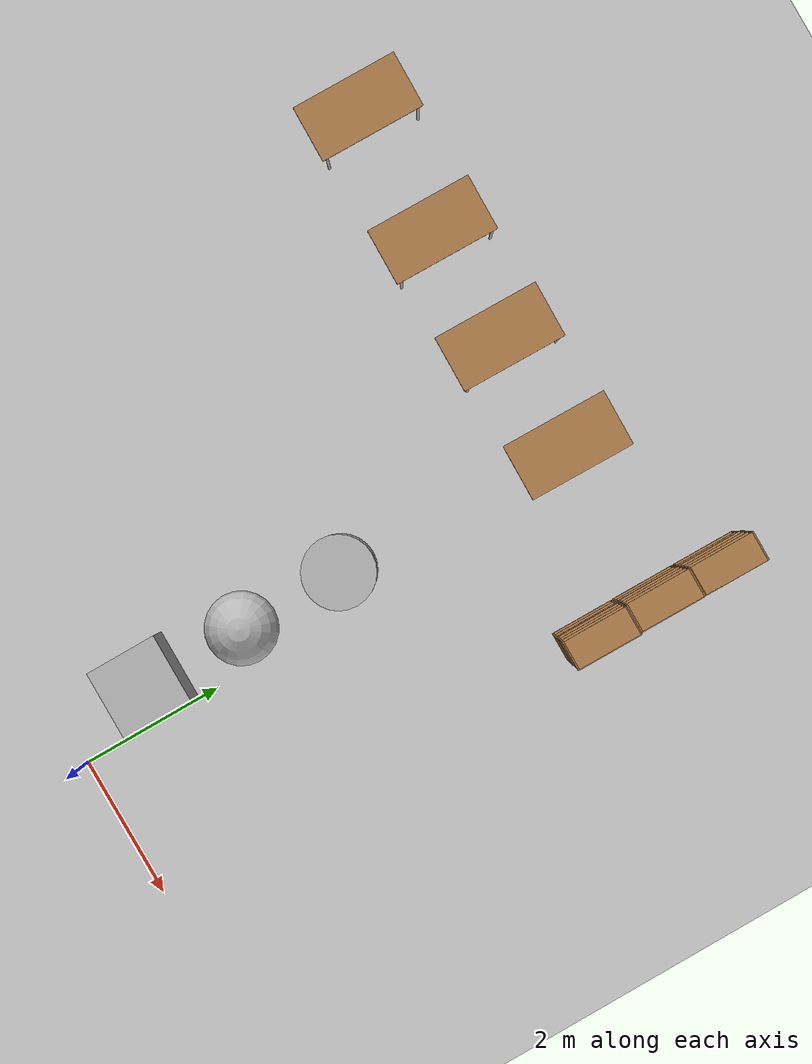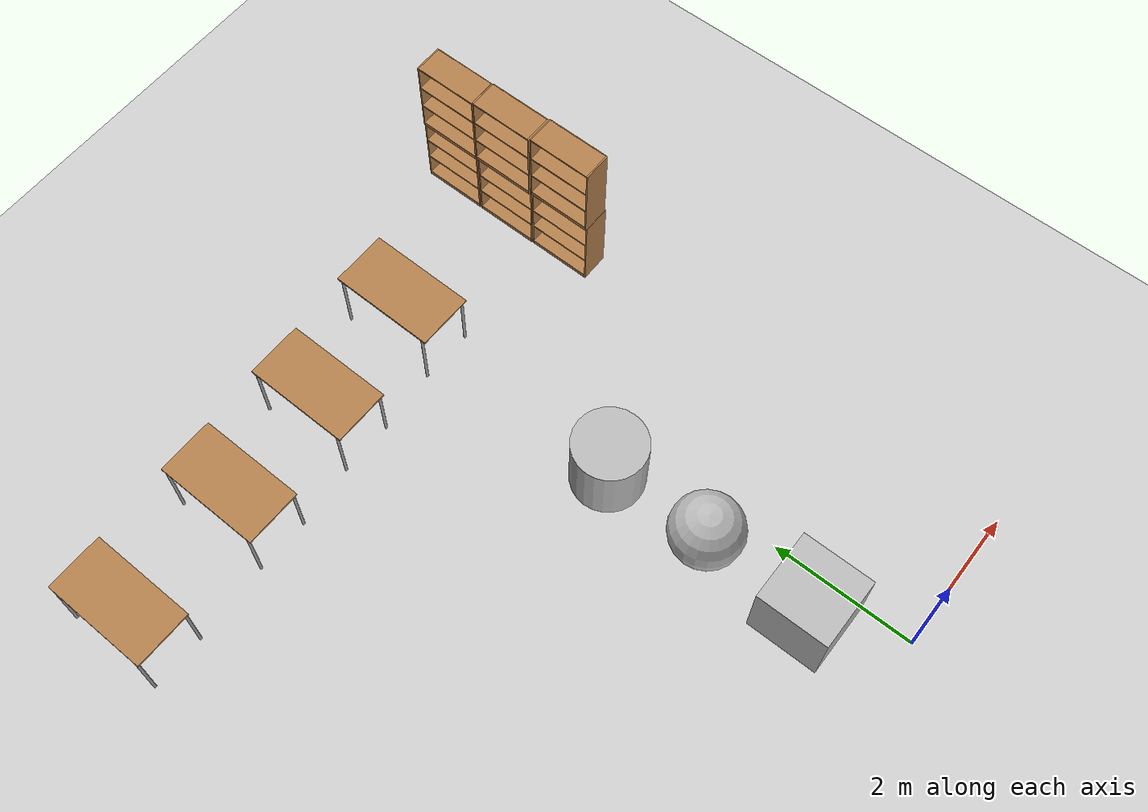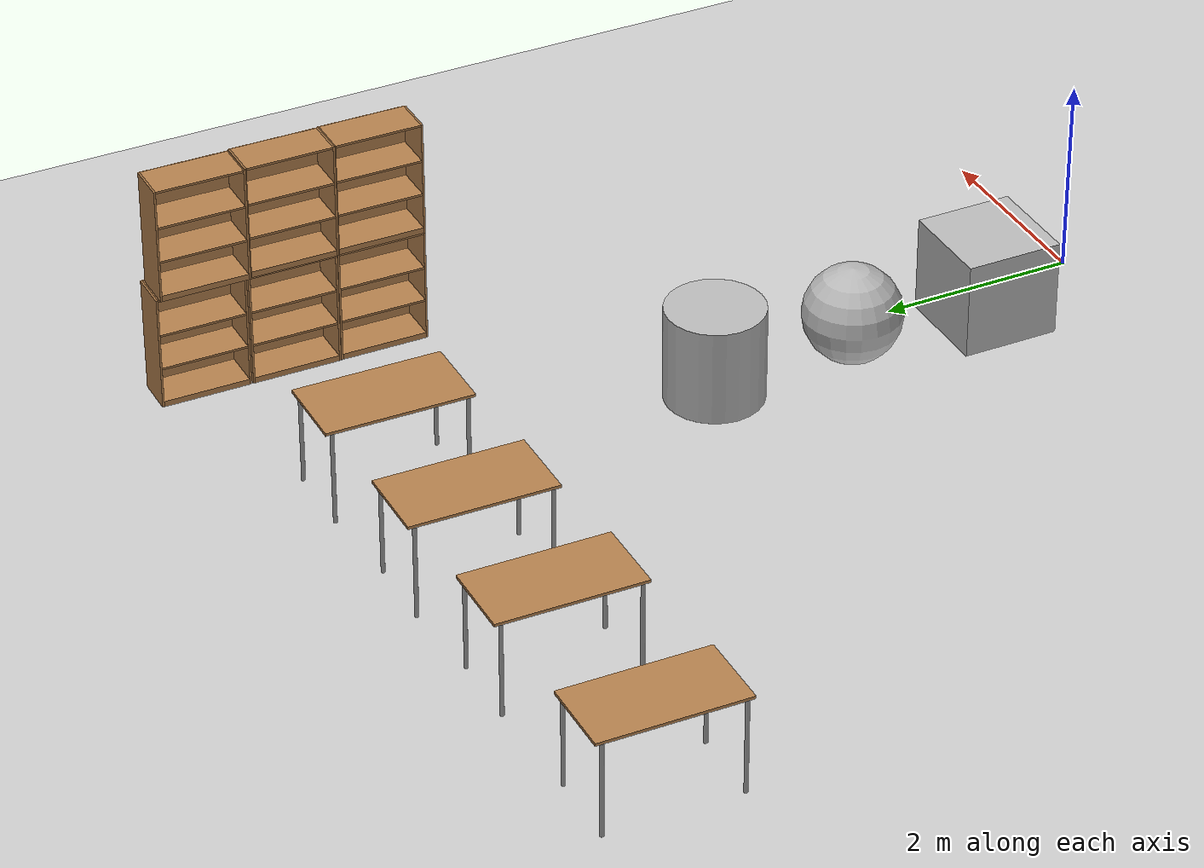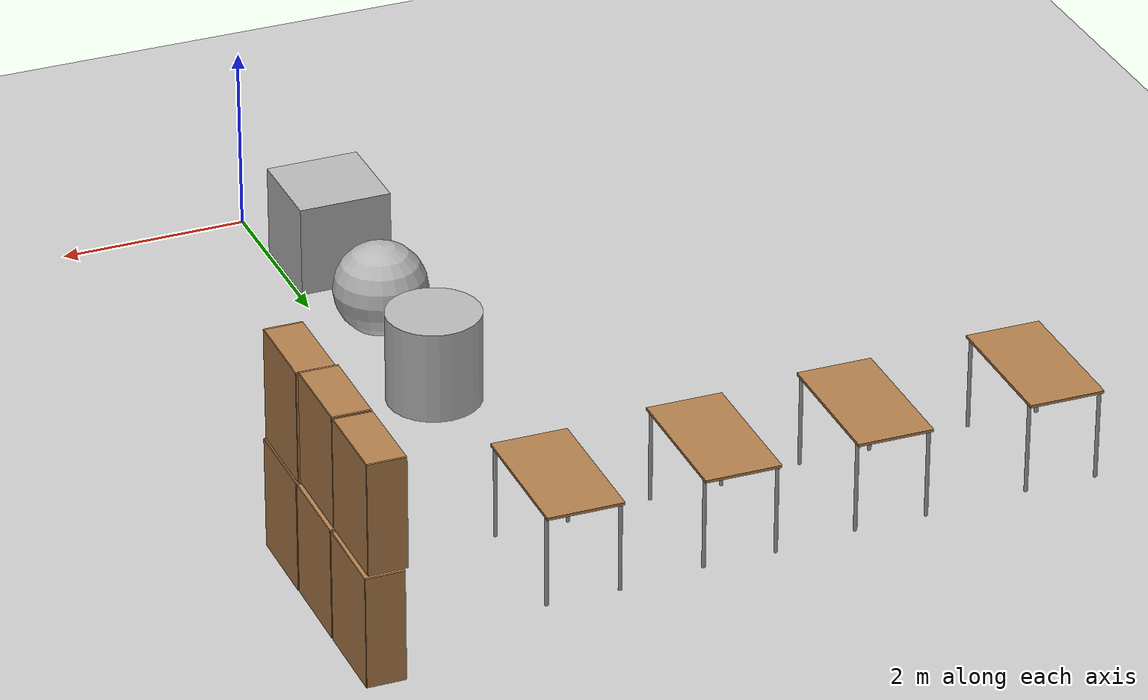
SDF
<sdf version="1.7">
 <world name="default">
  <model name="ground_plane">
   <static>1</static>
   <link name="link">
    <collision name="collision">
     <geometry><plane><normal>0 0 1</normal><size>100 100</size></plane></geometry>
     <surface><friction><ode><mu>100</mu><mu2>50</mu2></ode></friction></surface>
    </collision>
    <visual name="visual">
     <cast_shadows>0</cast_shadows>
     <geometry><plane><normal>0 0 1</normal><size>100 100</size></plane></geometry>
     <material>
      <script><uri>file://media/materials/scripts/gazebo.material</uri><name>Gazebo/Grey</name></script>
     </material>
    </visual>
   </link>
  </model>
  <model name="bookshelf">
   <static>1</static>
   <link name="link">
    <inertial><mass>1</mass></inertial>
    <collision name="back">
     <pose>0 0.005 0.6 0 -0 0</pose>
     <geometry><box><size>0.9 0.01 1.2</size></box></geometry>
    </collision>
    <visual name="visual1">
     <pose>0 0.005 0.6 0 -0 0</pose>
     <geometry><box><size>0.9 0.01 1.2</size></box></geometry>
     <material>
      <script><uri>file://media/materials/scripts/gazebo.material</uri><name>Gazebo/Wood</name></script>
     </material>
    </visual>
    <collision name="left_side">
     <pose>0.45 -0.195 0.6 0 -0 0</pose>
     <geometry><box><size>0.02 0.4 1.2</size></box></geometry>
    </collision>
    <visual name="visual2">
     <pose>0.45 -0.195 0.6 0 -0 0</pose>
     <geometry><box><size>0.02 0.4 1.2</size></box></geometry>
     <material>
      <script><uri>file://media/materials/scripts/gazebo.material</uri><name>Gazebo/Wood</name></script>
     </material>
    </visual>
    <collision name="right_side">
     <pose>-0.45 -0.195 0.6 0 -0 0</pose>
     <geometry><box><size>0.02 0.4 1.2</size></box></geometry>
    </collision>
    <visual name="visual3">
     <pose>-0.45 -0.195 0.6 0 -0 0</pose>
     <geometry><box><size>0.02 0.4 1.2</size></box></geometry>
     <material>
      <script><uri>file://media/materials/scripts/gazebo.material</uri><name>Gazebo/Wood</name></script>
     </material>
    </visual>
    <collision name="bottom">
     <pose>0 -0.195 0.03 0 -0 0</pose>
     <geometry><box><size>0.88 0.4 0.06</size></box></geometry>
    </collision>
    <visual name="visual4">
     <pose>0 -0.195 0.03 0 -0 0</pose>
     <geometry><box><size>0.88 0.4 0.06</size></box></geometry>
     <material>
      <script><uri>file://media/materials/scripts/gazebo.material</uri><name>Gazebo/Wood</name></script>
     </material>
    </visual>
    <collision name="top">
     <pose>0 -0.195 1.19 0 -0 0</pose>
     <geometry><box><size>0.88 0.4 0.02</size></box></geometry>
    </collision>
    <visual name="visual5">
     <pose>0 -0.195 1.19 0 -0 0</pose>
     <geometry><box><size>0.88 0.4 0.02</size></box></geometry>
     <material>
      <script><uri>file://media/materials/scripts/gazebo.material</uri><name>Gazebo/Wood</name></script>
     </material>
    </visual>
    <collision name="low_shelf">
     <pose>0 -0.195 0.43 0 -0 0</pose>
     <geometry><box><size>0.88 0.4 0.02</size></box></geometry>
    </collision>
    <visual name="visual6">
     <pose>0 -0.195 0.43 0 -0 0</pose>
     <geometry><box><size>0.88 0.4 0.02</size></box></geometry>
     <material>
      <script><uri>file://media/materials/scripts/gazebo.material</uri><name>Gazebo/Wood</name></script>
     </material>
    </visual>
    <collision name="high_shelf">
     <pose>0 -0.195 0.8 0 -0 0</pose>
     <geometry><box><size>0.88 0.4 0.02</size></box></geometry>
    </collision>
    <visual name="visual7">
     <pose>0 -0.195 0.8 0 -0 0</pose>
     <geometry><box><size>0.88 0.4 0.02</size></box></geometry>
     <material>
      <script><uri>file://media/materials/scripts/gazebo.material</uri><name>Gazebo/Wood</name></script>
     </material>
    </visual>
   </link>
   <pose>2.02719 8.56875 0 0 0 -1.57846</pose>
  </model>
  <model name="bookshelf_clone">
   <static>1</static>
   <link name="link">
    <inertial><mass>1</mass></inertial>
    <collision name="back">
     <pose>0 0.005 0.6 0 -0 0</pose>
     <geometry><box><size>0.9 0.01 1.2</size></box></geometry>
    </collision>
    <visual name="visual1">
     <pose>0 0.005 0.6 0 -0 0</pose>
     <geometry><box><size>0.9 0.01 1.2</size></box></geometry>
     <material>
      <script><uri>file://media/materials/scripts/gazebo.material</uri><name>Gazebo/Wood</name></script>
     </material>
    </visual>
    <collision name="left_side">
     <pose>0.45 -0.195 0.6 0 -0 0</pose>
     <geometry><box><size>0.02 0.4 1.2</size></box></geometry>
    </collision>
    <visual name="visual2">
     <pose>0.45 -0.195 0.6 0 -0 0</pose>
     <geometry><box><size>0.02 0.4 1.2</size></box></geometry>
     <material>
      <script><uri>file://media/materials/scripts/gazebo.material</uri><name>Gazebo/Wood</name></script>
     </material>
    </visual>
    <collision name="right_side">
     <pose>-0.45 -0.195 0.6 0 -0 0</pose>
     <geometry><box><size>0.02 0.4 1.2</size></box></geometry>
    </collision>
    <visual name="visual3">
     <pose>-0.45 -0.195 0.6 0 -0 0</pose>
     <geometry><box><size>0.02 0.4 1.2</size></box></geometry>
     <material>
      <script><uri>file://media/materials/scripts/gazebo.material</uri><name>Gazebo/Wood</name></script>
     </material>
    </visual>
    <collision name="bottom">
     <pose>0 -0.195 0.03 0 -0 0</pose>
     <geometry><box><size>0.88 0.4 0.06</size></box></geometry>
    </collision>
    <visual name="visual4">
     <pose>0 -0.195 0.03 0 -0 0</pose>
     <geometry><box><size>0.88 0.4 0.06</size></box></geometry>
     <material>
      <script><uri>file://media/materials/scripts/gazebo.material</uri><name>Gazebo/Wood</name></script>
     </material>
    </visual>
    <collision name="top">
     <pose>0 -0.195 1.19 0 -0 0</pose>
     <geometry><box><size>0.88 0.4 0.02</size></box></geometry>
    </collision>
    <visual name="visual5">
     <pose>0 -0.195 1.19 0 -0 0</pose>
     <geometry><box><size>0.88 0.4 0.02</size></box></geometry>
     <material>
      <script><uri>file://media/materials/scripts/gazebo.material</uri><name>Gazebo/Wood</name></script>
     </material>
    </visual>
    <collision name="low_shelf">
     <pose>0 -0.195 0.43 0 -0 0</pose>
     <geometry><box><size>0.88 0.4 0.02</size></box></geometry>
    </collision>
    <visual name="visual6">
     <pose>0 -0.195 0.43 0 -0 0</pose>
     <geometry><box><size>0.88 0.4 0.02</size></box></geometry>
     <material>
      <script><uri>file://media/materials/scripts/gazebo.material</uri><name>Gazebo/Wood</name></script>
     </material>
    </visual>
    <collision name="high_shelf">
     <pose>0 -0.195 0.8 0 -0 0</pose>
     <geometry><box><size>0.88 0.4 0.02</size></box></geometry>
    </collision>
    <visual name="visual7">
     <pose>0 -0.195 0.8 0 -0 0</pose>
     <geometry><box><size>0.88 0.4 0.02</size></box></geometry>
     <material>
      <script><uri>file://media/materials/scripts/gazebo.material</uri><name>Gazebo/Wood</name></script>
     </material>
    </visual>
   </link>
   <pose>2.02018 7.63191 0 0 0 -1.57846</pose>
  </model>
  <model name="bookshelf_clone_0">
   <static>1</static>
   <link name="link">
    <inertial><mass>1</mass></inertial>
    <collision name="back">
     <pose>0 0.005 0.6 0 -0 0</pose>
     <geometry><box><size>0.9 0.01 1.2</size></box></geometry>
    </collision>
    <visual name="visual1">
     <pose>0 0.005 0.6 0 -0 0</pose>
     <geometry><box><size>0.9 0.01 1.2</size></box></geometry>
     <material>
      <script><uri>file://media/materials/scripts/gazebo.material</uri><name>Gazebo/Wood</name></script>
     </material>
    </visual>
    <collision name="left_side">
     <pose>0.45 -0.195 0.6 0 -0 0</pose>
     <geometry><box><size>0.02 0.4 1.2</size></box></geometry>
    </collision>
    <visual name="visual2">
     <pose>0.45 -0.195 0.6 0 -0 0</pose>
     <geometry><box><size>0.02 0.4 1.2</size></box></geometry>
     <material>
      <script><uri>file://media/materials/scripts/gazebo.material</uri><name>Gazebo/Wood</name></script>
     </material>
    </visual>
    <collision name="right_side">
     <pose>-0.45 -0.195 0.6 0 -0 0</pose>
     <geometry><box><size>0.02 0.4 1.2</size></box></geometry>
    </collision>
    <visual name="visual3">
     <pose>-0.45 -0.195 0.6 0 -0 0</pose>
     <geometry><box><size>0.02 0.4 1.2</size></box></geometry>
     <material>
      <script><uri>file://media/materials/scripts/gazebo.material</uri><name>Gazebo/Wood</name></script>
     </material>
    </visual>
    <collision name="bottom">
     <pose>0 -0.195 0.03 0 -0 0</pose>
     <geometry><box><size>0.88 0.4 0.06</size></box></geometry>
    </collision>
    <visual name="visual4">
     <pose>0 -0.195 0.03 0 -0 0</pose>
     <geometry><box><size>0.88 0.4 0.06</size></box></geometry>
     <material>
      <script><uri>file://media/materials/scripts/gazebo.material</uri><name>Gazebo/Wood</name></script>
     </material>
    </visual>
    <collision name="top">
     <pose>0 -0.195 1.19 0 -0 0</pose>
     <geometry><box><size>0.88 0.4 0.02</size></box></geometry>
    </collision>
    <visual name="visual5">
     <pose>0 -0.195 1.19 0 -0 0</pose>
     <geometry><box><size>0.88 0.4 0.02</size></box></geometry>
     <material>
      <script><uri>file://media/materials/scripts/gazebo.material</uri><name>Gazebo/Wood</name></script>
     </material>
    </visual>
    <collision name="low_shelf">
     <pose>0 -0.195 0.43 0 -0 0</pose>
     <geometry><box><size>0.88 0.4 0.02</size></box></geometry>
    </collision>
    <visual name="visual6">
     <pose>0 -0.195 0.43 0 -0 0</pose>
     <geometry><box><size>0.88 0.4 0.02</size></box></geometry>
     <material>
      <script><uri>file://media/materials/scripts/gazebo.material</uri><name>Gazebo/Wood</name></script>
     </material>
    </visual>
    <collision name="high_shelf">
     <pose>0 -0.195 0.8 0 -0 0</pose>
     <geometry><box><size>0.88 0.4 0.02</size></box></geometry>
    </collision>
    <visual name="visual7">
     <pose>0 -0.195 0.8 0 -0 0</pose>
     <geometry><box><size>0.88 0.4 0.02</size></box></geometry>
     <material>
      <script><uri>file://media/materials/scripts/gazebo.material</uri><name>Gazebo/Wood</name></script>
     </material>
    </visual>
   </link>
   <pose>2.01813 6.70689 0 0 0 -1.57846</pose>
  </model>
  <model name="bookshelf_clone_1">
   <static>1</static>
   <link name="link">
    <inertial><mass>1</mass></inertial>
    <collision name="back">
     <pose>0 0.005 0.6 0 -0 0</pose>
     <geometry><box><size>0.9 0.01 1.2</size></box></geometry>
    </collision>
    <visual name="visual1">
     <pose>0 0.005 0.6 0 -0 0</pose>
     <geometry><box><size>0.9 0.01 1.2</size></box></geometry>
     <material>
      <script><uri>file://media/materials/scripts/gazebo.material</uri><name>Gazebo/Wood</name></script>
     </material>
    </visual>
    <collision name="left_side">
     <pose>0.45 -0.195 0.6 0 -0 0</pose>
     <geometry><box><size>0.02 0.4 1.2</size></box></geometry>
    </collision>
    <visual name="visual2">
     <pose>0.45 -0.195 0.6 0 -0 0</pose>
     <geometry><box><size>0.02 0.4 1.2</size></box></geometry>
     <material>
      <script><uri>file://media/materials/scripts/gazebo.material</uri><name>Gazebo/Wood</name></script>
     </material>
    </visual>
    <collision name="right_side">
     <pose>-0.45 -0.195 0.6 0 -0 0</pose>
     <geometry><box><size>0.02 0.4 1.2</size></box></geometry>
    </collision>
    <visual name="visual3">
     <pose>-0.45 -0.195 0.6 0 -0 0</pose>
     <geometry><box><size>0.02 0.4 1.2</size></box></geometry>
     <material>
      <script><uri>file://media/materials/scripts/gazebo.material</uri><name>Gazebo/Wood</name></script>
     </material>
    </visual>
    <collision name="bottom">
     <pose>0 -0.195 0.03 0 -0 0</pose>
     <geometry><box><size>0.88 0.4 0.06</size></box></geometry>
    </collision>
    <visual name="visual4">
     <pose>0 -0.195 0.03 0 -0 0</pose>
     <geometry><box><size>0.88 0.4 0.06</size></box></geometry>
     <material>
      <script><uri>file://media/materials/scripts/gazebo.material</uri><name>Gazebo/Wood</name></script>
     </material>
    </visual>
    <collision name="top">
     <pose>0 -0.195 1.19 0 -0 0</pose>
     <geometry><box><size>0.88 0.4 0.02</size></box></geometry>
    </collision>
    <visual name="visual5">
     <pose>0 -0.195 1.19 0 -0 0</pose>
     <geometry><box><size>0.88 0.4 0.02</size></box></geometry>
     <material>
      <script><uri>file://media/materials/scripts/gazebo.material</uri><name>Gazebo/Wood</name></script>
     </material>
    </visual>
    <collision name="low_shelf">
     <pose>0 -0.195 0.43 0 -0 0</pose>
     <geometry><box><size>0.88 0.4 0.02</size></box></geometry>
    </collision>
    <visual name="visual6">
     <pose>0 -0.195 0.43 0 -0 0</pose>
     <geometry><box><size>0.88 0.4 0.02</size></box></geometry>
     <material>
      <script><uri>file://media/materials/scripts/gazebo.material</uri><name>Gazebo/Wood</name></script>
     </material>
    </visual>
    <collision name="high_shelf">
     <pose>0 -0.195 0.8 0 -0 0</pose>
     <geometry><box><size>0.88 0.4 0.02</size></box></geometry>
    </collision>
    <visual name="visual7">
     <pose>0 -0.195 0.8 0 -0 0</pose>
     <geometry><box><size>0.88 0.4 0.02</size></box></geometry>
     <material>
      <script><uri>file://media/materials/scripts/gazebo.material</uri><name>Gazebo/Wood</name></script>
     </material>
    </visual>
   </link>
   <pose>1.98401 8.53938 1.20832 0 0 -1.57846</pose>
  </model>
  <model name="bookshelf_clone_1_clone">
   <static>1</static>
   <link name="link">
    <inertial><mass>1</mass></inertial>
    <collision name="back">
     <pose>0 0.005 0.6 0 -0 0</pose>
     <geometry><box><size>0.9 0.01 1.2</size></box></geometry>
    </collision>
    <visual name="visual1">
     <pose>0 0.005 0.6 0 -0 0</pose>
     <geometry><box><size>0.9 0.01 1.2</size></box></geometry>
     <material>
      <script><uri>file://media/materials/scripts/gazebo.material</uri><name>Gazebo/Wood</name></script>
     </material>
    </visual>
    <collision name="left_side">
     <pose>0.45 -0.195 0.6 0 -0 0</pose>
     <geometry><box><size>0.02 0.4 1.2</size></box></geometry>
    </collision>
    <visual name="visual2">
     <pose>0.45 -0.195 0.6 0 -0 0</pose>
     <geometry><box><size>0.02 0.4 1.2</size></box></geometry>
     <material>
      <script><uri>file://media/materials/scripts/gazebo.material</uri><name>Gazebo/Wood</name></script>
     </material>
    </visual>
    <collision name="right_side">
     <pose>-0.45 -0.195 0.6 0 -0 0</pose>
     <geometry><box><size>0.02 0.4 1.2</size></box></geometry>
    </collision>
    <visual name="visual3">
     <pose>-0.45 -0.195 0.6 0 -0 0</pose>
     <geometry><box><size>0.02 0.4 1.2</size></box></geometry>
     <material>
      <script><uri>file://media/materials/scripts/gazebo.material</uri><name>Gazebo/Wood</name></script>
     </material>
    </visual>
    <collision name="bottom">
     <pose>0 -0.195 0.03 0 -0 0</pose>
     <geometry><box><size>0.88 0.4 0.06</size></box></geometry>
    </collision>
    <visual name="visual4">
     <pose>0 -0.195 0.03 0 -0 0</pose>
     <geometry><box><size>0.88 0.4 0.06</size></box></geometry>
     <material>
      <script><uri>file://media/materials/scripts/gazebo.material</uri><name>Gazebo/Wood</name></script>
     </material>
    </visual>
    <collision name="top">
     <pose>0 -0.195 1.19 0 -0 0</pose>
     <geometry><box><size>0.88 0.4 0.02</size></box></geometry>
    </collision>
    <visual name="visual5">
     <pose>0 -0.195 1.19 0 -0 0</pose>
     <geometry><box><size>0.88 0.4 0.02</size></box></geometry>
     <material>
      <script><uri>file://media/materials/scripts/gazebo.material</uri><name>Gazebo/Wood</name></script>
     </material>
    </visual>
    <collision name="low_shelf">
     <pose>0 -0.195 0.43 0 -0 0</pose>
     <geometry><box><size>0.88 0.4 0.02</size></box></geometry>
    </collision>
    <visual name="visual6">
     <pose>0 -0.195 0.43 0 -0 0</pose>
     <geometry><box><size>0.88 0.4 0.02</size></box></geometry>
     <material>
      <script><uri>file://media/materials/scripts/gazebo.material</uri><name>Gazebo/Wood</name></script>
     </material>
    </visual>
    <collision name="high_shelf">
     <pose>0 -0.195 0.8 0 -0 0</pose>
     <geometry><box><size>0.88 0.4 0.02</size></box></geometry>
    </collision>
    <visual name="visual7">
     <pose>0 -0.195 0.8 0 -0 0</pose>
     <geometry><box><size>0.88 0.4 0.02</size></box></geometry>
     <material>
      <script><uri>file://media/materials/scripts/gazebo.material</uri><name>Gazebo/Wood</name></script>
     </material>
    </visual>
   </link>
   <pose>1.98187 7.6289 1.2192 0 0 -1.57846</pose>
  </model>
  <model name="bookshelf_clone_1_clone_clone">
   <static>1</static>
   <link name="link">
    <inertial><mass>1</mass></inertial>
    <collision name="back">
     <pose>0 0.005 0.6 0 -0 0</pose>
     <geometry><box><size>0.9 0.01 1.2</size></box></geometry>
    </collision>
    <visual name="visual1">
     <pose>0 0.005 0.6 0 -0 0</pose>
     <geometry><box><size>0.9 0.01 1.2</size></box></geometry>
     <material>
      <script><uri>file://media/materials/scripts/gazebo.material</uri><name>Gazebo/Wood</name></script>
     </material>
    </visual>
    <collision name="left_side">
     <pose>0.45 -0.195 0.6 0 -0 0</pose>
     <geometry><box><size>0.02 0.4 1.2</size></box></geometry>
    </collision>
    <visual name="visual2">
     <pose>0.45 -0.195 0.6 0 -0 0</pose>
     <geometry><box><size>0.02 0.4 1.2</size></box></geometry>
     <material>
      <script><uri>file://media/materials/scripts/gazebo.material</uri><name>Gazebo/Wood</name></script>
     </material>
    </visual>
    <collision name="right_side">
     <pose>-0.45 -0.195 0.6 0 -0 0</pose>
     <geometry><box><size>0.02 0.4 1.2</size></box></geometry>
    </collision>
    <visual name="visual3">
     <pose>-0.45 -0.195 0.6 0 -0 0</pose>
     <geometry><box><size>0.02 0.4 1.2</size></box></geometry>
     <material>
      <script><uri>file://media/materials/scripts/gazebo.material</uri><name>Gazebo/Wood</name></script>
     </material>
    </visual>
    <collision name="bottom">
     <pose>0 -0.195 0.03 0 -0 0</pose>
     <geometry><box><size>0.88 0.4 0.06</size></box></geometry>
    </collision>
    <visual name="visual4">
     <pose>0 -0.195 0.03 0 -0 0</pose>
     <geometry><box><size>0.88 0.4 0.06</size></box></geometry>
     <material>
      <script><uri>file://media/materials/scripts/gazebo.material</uri><name>Gazebo/Wood</name></script>
     </material>
    </visual>
    <collision name="top">
     <pose>0 -0.195 1.19 0 -0 0</pose>
     <geometry><box><size>0.88 0.4 0.02</size></box></geometry>
    </collision>
    <visual name="visual5">
     <pose>0 -0.195 1.19 0 -0 0</pose>
     <geometry><box><size>0.88 0.4 0.02</size></box></geometry>
     <material>
      <script><uri>file://media/materials/scripts/gazebo.material</uri><name>Gazebo/Wood</name></script>
     </material>
    </visual>
    <collision name="low_shelf">
     <pose>0 -0.195 0.43 0 -0 0</pose>
     <geometry><box><size>0.88 0.4 0.02</size></box></geometry>
    </collision>
    <visual name="visual6">
     <pose>0 -0.195 0.43 0 -0 0</pose>
     <geometry><box><size>0.88 0.4 0.02</size></box></geometry>
     <material>
      <script><uri>file://media/materials/scripts/gazebo.material</uri><name>Gazebo/Wood</name></script>
     </material>
    </visual>
    <collision name="high_shelf">
     <pose>0 -0.195 0.8 0 -0 0</pose>
     <geometry><box><size>0.88 0.4 0.02</size></box></geometry>
    </collision>
    <visual name="visual7">
     <pose>0 -0.195 0.8 0 -0 0</pose>
     <geometry><box><size>0.88 0.4 0.02</size></box></geometry>
     <material>
      <script><uri>file://media/materials/scripts/gazebo.material</uri><name>Gazebo/Wood</name></script>
     </material>
    </visual>
   </link>
   <pose>1.99749 6.71175 1.21121 0 0 -1.57846</pose>
  </model>
  <model name="table_clone_3">
   <static>1</static>
   <link name="link">
    <collision name="surface">
     <pose>0 0 1 0 -0 0</pose>
     <geometry><box><size>1.5 0.8 0.03</size></box></geometry>
     <surface><friction><ode><mu>0.6</mu><mu2>0.6</mu2></ode></friction></surface>
    </collision>
    <visual name="visual1">
     <pose>0 0 1 0 -0 0</pose>
     <geometry><box><size>1.5 0.8 0.03</size></box></geometry>
     <material>
      <script><uri>file://media/materials/scripts/gazebo.material</uri><name>Gazebo/Wood</name></script>
     </material>
    </visual>
    <collision name="front_left_leg">
     <pose>0.68 0.38 0.5 0 -0 0</pose>
     <geometry><cylinder><radius>0.02</radius><length>1</length></cylinder></geometry>
    </collision>
    <visual name="front_left_leg">
     <pose>0.68 0.38 0.5 0 -0 0</pose>
     <geometry><cylinder><radius>0.02</radius><length>1</length></cylinder></geometry>
     <material>
      <script><uri>file://media/materials/scripts/gazebo.material</uri><name>Gazebo/Grey</name></script>
     </material>
    </visual>
    <collision name="front_right_leg">
     <pose>0.68 -0.38 0.5 0 -0 0</pose>
     <geometry><cylinder><radius>0.02</radius><length>1</length></cylinder></geometry>
    </collision>
    <visual name="front_right_leg">
     <pose>0.68 -0.38 0.5 0 -0 0</pose>
     <geometry><cylinder><radius>0.02</radius><length>1</length></cylinder></geometry>
     <material>
      <script><uri>file://media/materials/scripts/gazebo.material</uri><name>Gazebo/Grey</name></script>
     </material>
    </visual>
    <collision name="back_right_leg">
     <pose>-0.68 -0.38 0.5 0 -0 0</pose>
     <geometry><cylinder><radius>0.02</radius><length>1</length></cylinder></geometry>
    </collision>
    <visual name="back_right_leg">
     <pose>-0.68 -0.38 0.5 0 -0 0</pose>
     <geometry><cylinder><radius>0.02</radius><length>1</length></cylinder></geometry>
     <material>
      <script><uri>file://media/materials/scripts/gazebo.material</uri><name>Gazebo/Grey</name></script>
     </material>
    </visual>
    <collision name="back_left_leg">
     <pose>-0.68 0.38 0.5 0 -0 0</pose>
     <geometry><cylinder><radius>0.02</radius><length>1</length></cylinder></geometry>
    </collision>
    <visual name="back_left_leg">
     <pose>-0.68 0.38 0.5 0 -0 0</pose>
     <geometry><cylinder><radius>0.02</radius><length>1</length></cylinder></geometry>
     <material>
      <script><uri>file://media/materials/scripts/gazebo.material</uri><name>Gazebo/Grey</name></script>
     </material>
    </visual>
   </link>
   <pose>-5.65391 7.47844 0 0 -0 1.5559</pose>
  </model>
  <model name="textured_shapes">
   <pose>-0.533397 2.72314 0.5 0 -0 0</pose>
   <link name="box">
    <pose>0 -1.5 0 0 -0 0</pose>
    <collision name="collision"><geometry><box><size>1 1 1</size></box></geometry></collision>
    <visual name="visual">
     <geometry><box><size>1 1 1</size></box></geometry>
     <material>
      <script>
       <uri>model://textured_shapes/materials/scripts</uri>
       <uri>model://textured_shapes/materials/textures</uri>
       <name>TexturedShape/Squares</name>
      </script>
     </material>
    </visual>
    <inertial>
     <inertia><ixx>1</ixx><ixy>0</ixy><ixz>0</ixz><iyy>1</iyy><iyz>0</iyz><izz>1</izz></inertia>
     <mass>1</mass>
    </inertial>
   </link>
   <link name="sphere">
    <collision name="collision"><geometry><sphere><radius>0.5</radius></sphere></geometry></collision>
    <visual name="visual">
     <geometry><sphere><radius>0.5</radius></sphere></geometry>
     <material>
      <script>
       <uri>model://textured_shapes/materials/scripts</uri>
       <uri>model://textured_shapes/materials/textures</uri>
       <name>TexturedShape/Squares</name>
      </script>
     </material>
    </visual>
    <inertial>
     <inertia><ixx>1</ixx><ixy>0</ixy><ixz>0</ixz><iyy>1</iyy><iyz>0</iyz><izz>1</izz></inertia>
     <mass>1</mass>
    </inertial>
   </link>
   <link name="cylinder">
    <pose>0 1.5 0 0 -0 0</pose>
    <collision name="collision">
     <geometry><cylinder><radius>0.5</radius><length>1</length></cylinder></geometry>
    </collision>
    <visual name="visual">
     <geometry><cylinder><radius>0.5</radius><length>1</length></cylinder></geometry>
     <material>
      <script>
       <uri>model://textured_shapes/materials/scripts</uri>
       <uri>model://textured_shapes/materials/textures</uri>
       <name>TexturedShape/Squares</name>
      </script>
     </material>
    </visual>
    <inertial>
     <inertia><ixx>1</ixx><ixy>0</ixy><ixz>0</ixz><iyy>1</iyy><iyz>0</iyz><izz>1</izz></inertia>
     <mass>1</mass>
    </inertial>
   </link>
  </model>
  <model name="table_clone_3_clone">
   <static>1</static>
   <link name="link">
    <collision name="surface">
     <pose>0 0 1 0 -0 0</pose>
     <geometry><box><size>1.5 0.8 0.03</size></box></geometry>
     <surface><friction><ode><mu>0.6</mu><mu2>0.6</mu2></ode></friction></surface>
    </collision>
    <visual name="visual1">
     <pose>0 0 1 0 -0 0</pose>
     <geometry><box><size>1.5 0.8 0.03</size></box></geometry>
     <material>
      <script><uri>file://media/materials/scripts/gazebo.material</uri><name>Gazebo/Wood</name></script>
     </material>
    </visual>
    <collision name="front_left_leg">
     <pose>0.68 0.38 0.5 0 -0 0</pose>
     <geometry><cylinder><radius>0.02</radius><length>1</length></cylinder></geometry>
    </collision>
    <visual name="front_left_leg">
     <pose>0.68 0.38 0.5 0 -0 0</pose>
     <geometry><cylinder><radius>0.02</radius><length>1</length></cylinder></geometry>
     <material>
      <script><uri>file://media/materials/scripts/gazebo.material</uri><name>Gazebo/Grey</name></script>
     </material>
    </visual>
    <collision name="front_right_leg">
     <pose>0.68 -0.38 0.5 0 -0 0</pose>
     <geometry><cylinder><radius>0.02</radius><length>1</length></cylinder></geometry>
    </collision>
    <visual name="front_right_leg">
     <pose>0.68 -0.38 0.5 0 -0 0</pose>
     <geometry><cylinder><radius>0.02</radius><length>1</length></cylinder></geometry>
     <material>
      <script><uri>file://media/materials/scripts/gazebo.material</uri><name>Gazebo/Grey</name></script>
     </material>
    </visual>
    <collision name="back_right_leg">
     <pose>-0.68 -0.38 0.5 0 -0 0</pose>
     <geometry><cylinder><radius>0.02</radius><length>1</length></cylinder></geometry>
    </collision>
    <visual name="back_right_leg">
     <pose>-0.68 -0.38 0.5 0 -0 0</pose>
     <geometry><cylinder><radius>0.02</radius><length>1</length></cylinder></geometry>
     <material>
      <script><uri>file://media/materials/scripts/gazebo.material</uri><name>Gazebo/Grey</name></script>
     </material>
    </visual>
    <collision name="back_left_leg">
     <pose>-0.68 0.38 0.5 0 -0 0</pose>
     <geometry><cylinder><radius>0.02</radius><length>1</length></cylinder></geometry>
    </collision>
    <visual name="back_left_leg">
     <pose>-0.68 0.38 0.5 0 -0 0</pose>
     <geometry><cylinder><radius>0.02</radius><length>1</length></cylinder></geometry>
     <material>
      <script><uri>file://media/materials/scripts/gazebo.material</uri><name>Gazebo/Grey</name></script>
     </material>
    </visual>
   </link>
   <pose>-3.78195 7.51411 0 0 -0 1.5559</pose>
  </model>
  <model name="table_clone_3_clone_0">
   <static>1</static>
   <link name="link">
    <collision name="surface">
     <pose>0 0 1 0 -0 0</pose>
     <geometry><box><size>1.5 0.8 0.03</size></box></geometry>
     <surface><friction><ode><mu>0.6</mu><mu2>0.6</mu2></ode></friction></surface>
    </collision>
    <visual name="visual1">
     <pose>0 0 1 0 -0 0</pose>
     <geometry><box><size>1.5 0.8 0.03</size></box></geometry>
     <material>
      <script><uri>file://media/materials/scripts/gazebo.material</uri><name>Gazebo/Wood</name></script>
     </material>
    </visual>
    <collision name="front_left_leg">
     <pose>0.68 0.38 0.5 0 -0 0</pose>
     <geometry><cylinder><radius>0.02</radius><length>1</length></cylinder></geometry>
    </collision>
    <visual name="front_left_leg">
     <pose>0.68 0.38 0.5 0 -0 0</pose>
     <geometry><cylinder><radius>0.02</radius><length>1</length></cylinder></geometry>
     <material>
      <script><uri>file://media/materials/scripts/gazebo.material</uri><name>Gazebo/Grey</name></script>
     </material>
    </visual>
    <collision name="front_right_leg">
     <pose>0.68 -0.38 0.5 0 -0 0</pose>
     <geometry><cylinder><radius>0.02</radius><length>1</length></cylinder></geometry>
    </collision>
    <visual name="front_right_leg">
     <pose>0.68 -0.38 0.5 0 -0 0</pose>
     <geometry><cylinder><radius>0.02</radius><length>1</length></cylinder></geometry>
     <material>
      <script><uri>file://media/materials/scripts/gazebo.material</uri><name>Gazebo/Grey</name></script>
     </material>
    </visual>
    <collision name="back_right_leg">
     <pose>-0.68 -0.38 0.5 0 -0 0</pose>
     <geometry><cylinder><radius>0.02</radius><length>1</length></cylinder></geometry>
    </collision>
    <visual name="back_right_leg">
     <pose>-0.68 -0.38 0.5 0 -0 0</pose>
     <geometry><cylinder><radius>0.02</radius><length>1</length></cylinder></geometry>
     <material>
      <script><uri>file://media/materials/scripts/gazebo.material</uri><name>Gazebo/Grey</name></script>
     </material>
    </visual>
    <collision name="back_left_leg">
     <pose>-0.68 0.38 0.5 0 -0 0</pose>
     <geometry><cylinder><radius>0.02</radius><length>1</length></cylinder></geometry>
    </collision>
    <visual name="back_left_leg">
     <pose>-0.68 0.38 0.5 0 -0 0</pose>
     <geometry><cylinder><radius>0.02</radius><length>1</length></cylinder></geometry>
     <material>
      <script><uri>file://media/materials/scripts/gazebo.material</uri><name>Gazebo/Grey</name></script>
     </material>
    </visual>
   </link>
   <pose>-2.13844 7.57652 0 0 -0 1.5559</pose>
  </model>
  <model name="table_clone_3_clone_1">
   <static>1</static>
   <link name="link">
    <collision name="surface">
     <pose>0 0 1 0 -0 0</pose>
     <geometry><box><size>1.5 0.8 0.03</size></box></geometry>
     <surface><friction><ode><mu>0.6</mu><mu2>0.6</mu2></ode></friction></surface>
    </collision>
    <visual name="visual1">
     <pose>0 0 1 0 -0 0</pose>
     <geometry><box><size>1.5 0.8 0.03</size></box></geometry>
     <material>
      <script><uri>file://media/materials/scripts/gazebo.material</uri><name>Gazebo/Wood</name></script>
     </material>
    </visual>
    <collision name="front_left_leg">
     <pose>0.68 0.38 0.5 0 -0 0</pose>
     <geometry><cylinder><radius>0.02</radius><length>1</length></cylinder></geometry>
    </collision>
    <visual name="front_left_leg">
     <pose>0.68 0.38 0.5 0 -0 0</pose>
     <geometry><cylinder><radius>0.02</radius><length>1</length></cylinder></geometry>
     <material>
      <script><uri>file://media/materials/scripts/gazebo.material</uri><name>Gazebo/Grey</name></script>
     </material>
    </visual>
    <collision name="front_right_leg">
     <pose>0.68 -0.38 0.5 0 -0 0</pose>
     <geometry><cylinder><radius>0.02</radius><length>1</length></cylinder></geometry>
    </collision>
    <visual name="front_right_leg">
     <pose>0.68 -0.38 0.5 0 -0 0</pose>
     <geometry><cylinder><radius>0.02</radius><length>1</length></cylinder></geometry>
     <material>
      <script><uri>file://media/materials/scripts/gazebo.material</uri><name>Gazebo/Grey</name></script>
     </material>
    </visual>
    <collision name="back_right_leg">
     <pose>-0.68 -0.38 0.5 0 -0 0</pose>
     <geometry><cylinder><radius>0.02</radius><length>1</length></cylinder></geometry>
    </collision>
    <visual name="back_right_leg">
     <pose>-0.68 -0.38 0.5 0 -0 0</pose>
     <geometry><cylinder><radius>0.02</radius><length>1</length></cylinder></geometry>
     <material>
      <script><uri>file://media/materials/scripts/gazebo.material</uri><name>Gazebo/Grey</name></script>
     </material>
    </visual>
    <collision name="back_left_leg">
     <pose>-0.68 0.38 0.5 0 -0 0</pose>
     <geometry><cylinder><radius>0.02</radius><length>1</length></cylinder></geometry>
    </collision>
    <visual name="back_left_leg">
     <pose>-0.68 0.38 0.5 0 -0 0</pose>
     <geometry><cylinder><radius>0.02</radius><length>1</length></cylinder></geometry>
     <material>
      <script><uri>file://media/materials/scripts/gazebo.material</uri><name>Gazebo/Grey</name></script>
     </material>
    </visual>
   </link>
   <pose>-0.470329 7.63753 0 0 -0 1.5559</pose>
  </model>
 </world>
</sdf>
